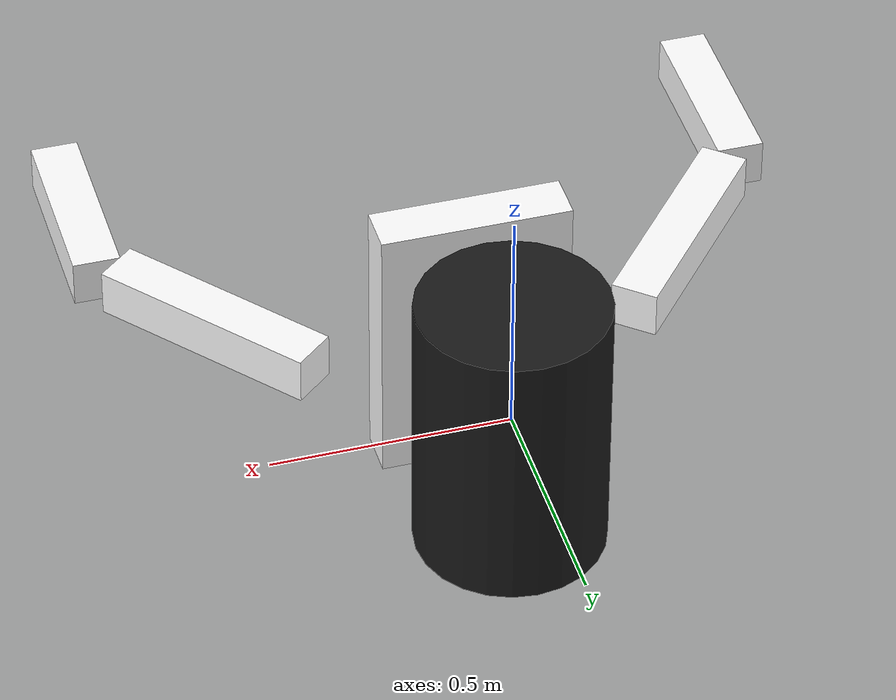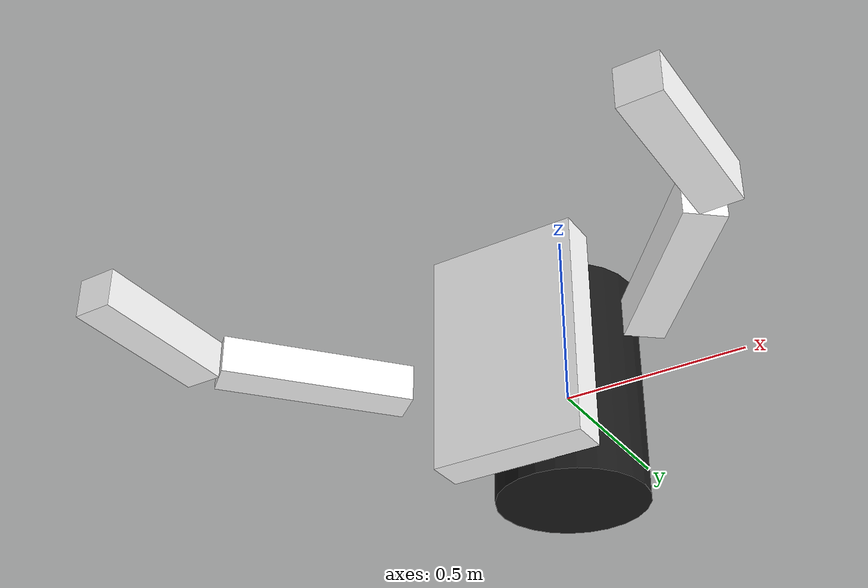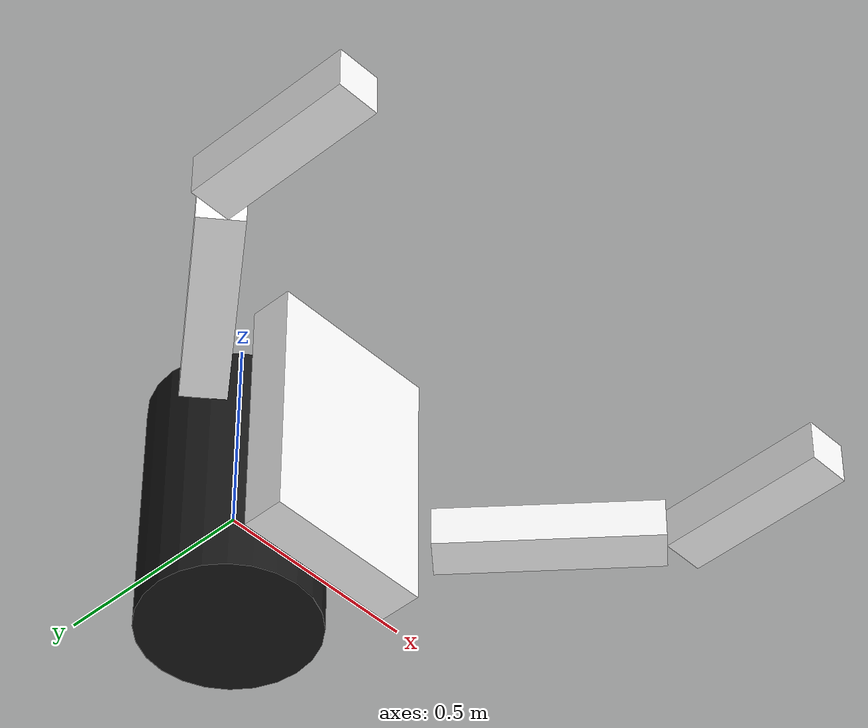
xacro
<?xml version="1.0"?>
<robot xmlns:xacro="http://ros.org/wiki/xacro" name="two_finger_mimic_end_effector">

    <xacro:macro name="mimic_joint_plugin_gazebo" params="name_prefix parent_joint mimic_joint has_pid:=false multiplier:=1.0 offset:=0 sensitiveness:=0.0 max_effort:=1.0 robot_namespace:=''">
        <gazebo>
        <plugin name="${name_prefix}mimic_joint_plugin" filename="libroboticsgroup_gazebo_mimic_joint_plugin.so">
            <joint>${parent_joint}</joint>
            <mimicJoint>${mimic_joint}</mimicJoint>
            <xacro:if value="${has_pid}">                     <!-- if set to true, PID parameters from "/gazebo_ros_control/pid_gains/${mimic_joint}" are loaded -->
                <hasPID />
            </xacro:if>
            <multiplier>${multiplier}</multiplier>
            <offset>${offset}</offset>
            <sensitiveness>${sensitiveness}</sensitiveness>   <!-- if absolute difference between setpoint and process value is below this threshold, do nothing; 0.0 = disable [rad] -->
            <maxEffort>${max_effort}</maxEffort>              <!-- only taken into account if has_pid:=true [Nm] -->
            <xacro:unless value="${robot_namespace == ''}">
                <robotNamespace>($robot_namespace)</robotNamespace>
            </xacro:unless>
        </plugin>
        </gazebo>
    </xacro:macro>

    <link name="world"/>
        <joint name="virtualFixed" type="fixed">
        <parent link="world"/>
        <child link="motor"/>
    </joint>

  <link name="motor">
  <inertial>
    <mass value="1"/>
    <inertia ixx="100" ixy="0" ixz="0" iyy="100" iyz="0" izz="100" />
    <origin/>
  </inertial>
    <visual>
      <geometry>
        <cylinder length="0.6" radius=".2"/>
      </geometry>
      <material name="black">

      <color rgba=".1 .1 .1 1"/>
      </material>
    </visual>
  <collision>
    <origin xyz="0 0 0"/>
    <geometry>
      <cylinder length="0.6" radius=".2"/>
    </geometry>
    <contact_coefficients mu="0" kp="1000.0" kd="1.0"/>
  </collision>
  </link>

  <link name="base">
  <inertial>
    <mass value="1"/>
    <inertia ixx="100" ixy="0" ixz="0" iyy="100" iyz="0" izz="100" />
    <origin/>
  </inertial>
    <visual>
      <geometry>
        <box size="0.4 .1 .6"/>
      </geometry>
      <origin rpy="0 0 0" xyz="0 -0.15 0"/>
      <material name="white">
        <color rgba="1 1 1 1"/>
      </material>
    </visual>
  <collision>
      <origin rpy="0 0 0" xyz="0 -0.15 0"/>
    <geometry>
        <box size="0.4 .1 .6"/>
    </geometry>
    <contact_coefficients mu="0" kp="1000.0" kd="1.0"/>
  </collision>
  </link>

  <joint name="motor_to_base" type="fixed">
    <parent link="motor"/>
    <child link="base"/>
    <origin xyz="0 -0.15 0"/>
  </joint>

  <link name="left_finger">
  <inertial>
    <mass value="1"/>
    <inertia ixx="100" ixy="0" ixz="0" iyy="100" iyz="0" izz="100" />
    <origin/>
  </inertial>
    <visual>
      <geometry>
        <box size="0.1 .5 .1"/>
      </geometry>
      <origin rpy="0 0 -0.7" xyz="-0.4 -0.3 0"/>
      <material name="white">
        <color rgba="1 1 1 1"/>
      </material>
    </visual>
  <collision>
      <origin rpy="0 0 -0.7" xyz="-0.4 -0.3 0"/>
    <geometry>
        <box size="0.1 .5 .1"/>
    </geometry>
    <contact_coefficients mu="0" kp="1000.0" kd="1.0"/>
  </collision>
  </link>

  <joint name="base_to_left_finger" type="revolute">
    <axis xyz="0 0 1"/>
    <limit effort="1000.0" lower="0.0" upper="0.7" velocity="0.5"/>
    <parent link="base"/>
    <child link="left_finger"/>
    <origin xyz="-0.1 0 0"/>
  </joint>

  <link name="right_finger">
  <inertial>
    <mass value="1"/>
    <inertia ixx="100" ixy="0" ixz="0" iyy="100" iyz="0" izz="100" />
    <origin/>
  </inertial>
    <visual>
      <geometry>
        <box size="0.1 .5 .1"/>
      </geometry>
      <origin rpy="0 0 0.7" xyz="0.4 -0.3 0.0"/>
      <material name="white">
        <color rgba="1 1 1 1"/>
      </material>
    </visual>
  <collision>
      <origin rpy="0 0 0.7" xyz="0.4 -0.3 0.0"/>
    <geometry>
        <box size="0.1 .5 .1"/>
    </geometry>
    <contact_coefficients mu="0" kp="1000.0" kd="1.0"/>
  </collision>
  </link>

  <joint name="base_to_right_finger" type="revolute">
    <axis xyz="0 0 1"/>
    <limit effort="1000.0" lower="-0.7" upper="0.0" velocity="0.5"/>
    <parent link="base"/>
    <child link="right_finger"/>
    <origin xyz=".1 0 0"/>
    <mimic joint="base_to_left_finger" multiplier="-1" offset="0"/>
  </joint>

    <xacro:mimic_joint_plugin_gazebo name_prefix="base_to_right_finger_joint"
    parent_joint="base_to_left_finger" mimic_joint="base_to_right_finger"
    has_pid="false" multiplier="-1.0" max_effort="1000.0" />

  <link name="left_fingertip">
  <inertial>
    <mass value="1"/>
    <inertia ixx="100" ixy="0" ixz="0" iyy="100" iyz="0" izz="100" />
    <origin/>
  </inertial>
    <visual>
      <geometry>
        <box size="0.1 .4 .1"/>
      </geometry>
      <origin rpy="0 0 0" xyz="0 -0.2 0"/>
      <material name="white">
        <color rgba="1 1 1 1"/>
      </material>
    </visual>
  <collision>
      <origin rpy="0 0 0" xyz="0 -0.2 0"/>
    <geometry>
        <box size="0.1 .4 .1"/>
    </geometry>
    <contact_coefficients mu="0" kp="1000.0" kd="1.0"/>
  </collision>
  </link>

  <joint name="left_finger_to_left_fingertip" type="revolute">
    <axis xyz="0 0 1"/>
    <limit effort="1.0" lower="0" upper="0.9" velocity="0.5"/>
    <parent link="left_finger"/>
    <child link="left_fingertip"/>
    <origin xyz="-0.6 -0.5 0"/>
    <mimic joint="base_to_left_finger" multiplier="0.85" offset="0"/>
  </joint>

  <xacro:mimic_joint_plugin_gazebo name_prefix="left_finger_to_left_fingertip_joint"
    parent_joint="base_to_left_finger" mimic_joint="left_finger_to_left_fingertip"
    has_pid="false" multiplier="0.85" max_effort="1.0" />

  <link name="right_fingertip">
  <inertial>
    <mass value="1"/>
    <inertia ixx="100" ixy="0" ixz="0" iyy="100" iyz="0" izz="100" />
    <origin/>
  </inertial>
    <visual>
      <geometry>
        <box size="0.1 .4 .1"/>
      </geometry>
      <origin rpy="0 0 0" xyz="0 -0.2 0"/>
      <material name="white">
        <color rgba="1 1 1 1"/>
      </material>
    </visual>
  <collision>
      <origin rpy="0 0 0" xyz="0 -0.2 0"/>
    <geometry>
        <box size="0.1 .4 .1"/>
    </geometry>
    <contact_coefficients mu="0" kp="1000.0" kd="1.0"/>
  </collision>
  </link>

  <joint name="right_finger_to_right_fingertip" type="revolute">
    <axis xyz="0 0 1"/>
    <limit effort="1.0" lower="-0.9" upper="0.0" velocity="0.5"/>
    <parent link="right_finger"/>
    <child link="right_fingertip"/>
    <origin xyz="0.6 -0.5 0.0"/>
    <mimic joint="base_to_right_finger" multiplier="0.85" offset="0"/>
  </joint>

    <xacro:mimic_joint_plugin_gazebo name_prefix="right_finger_to_right_fingertip_joint"
    parent_joint="base_to_right_finger" mimic_joint="right_finger_to_right_fingertip"
    has_pid="false" multiplier="0.85" max_effort="1.0" />

    <gazebo>
        <plugin name="two_finger_mimic_controller" filename="libRoseePlugin.so">
        </plugin>
    </gazebo>

</robot>
